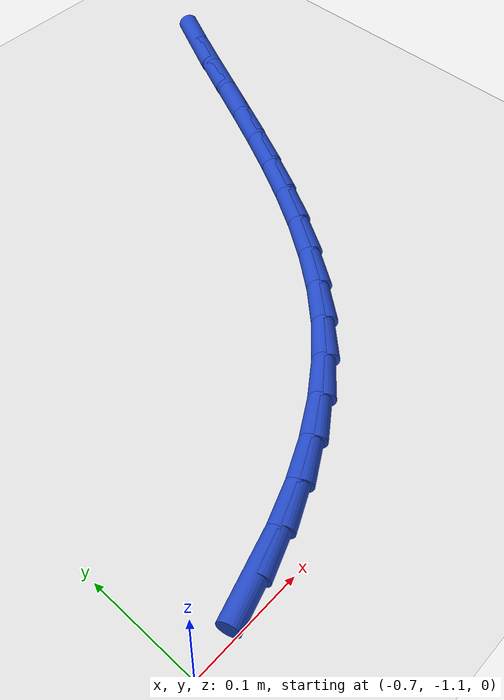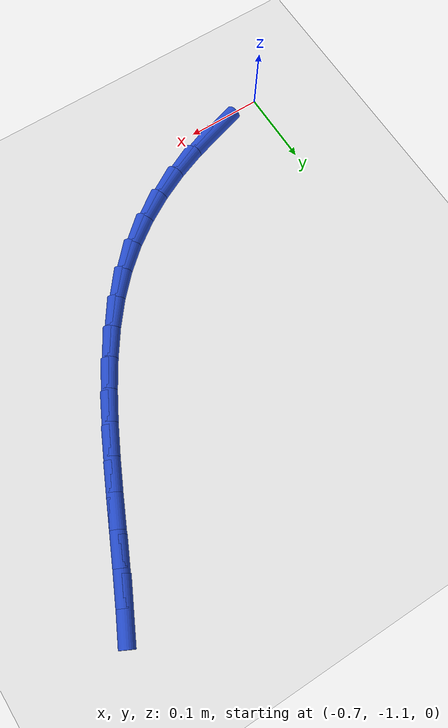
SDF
<sdf version="1.6">
 <world name="default">
  <model name="ground_plane">
   <static>1</static>
   <link name="link">
    <collision name="collision">
     <geometry><plane><normal>0 0 1</normal><size>100 100</size></plane></geometry>
     <surface><friction><ode><mu>100</mu><mu2>50</mu2></ode></friction></surface>
    </collision>
    <visual name="visual">
     <cast_shadows>0</cast_shadows>
     <geometry><plane><normal>0 0 1</normal><size>100 100</size></plane></geometry>
     <material>
      <script><uri>file://media/materials/scripts/gazebo.material</uri><name>Gazebo/WhiteGlow</name></script>
     </material>
    </visual>
   </link>
  </model>
  <model name="line">
   <link name="link_168">
    <pose>-0.6244132182745064 -1.0834729190270838 0.01 0 1.57 0.2942015855316978</pose>
    <collision name="collision">
     <geometry><cylinder><radius>0.01</radius><length>0.08</length></cylinder></geometry>
    </collision>
    <visual name="visual">
     <material>
      <script><name>Gazebo/Blue</name><uri>file://media/materials/scripts/gazebo.material</uri></script>
     </material>
     <geometry><cylinder><radius>0.01</radius><length>0.08</length></cylinder></geometry>
    </visual>
   </link>
   <link name="link_169">
    <pose>-0.5851173193138275 -1.0715664858100598 0.01 0 1.57 0.36771555956772795</pose>
    <collision name="collision">
     <geometry><cylinder><radius>0.01</radius><length>0.08</length></cylinder></geometry>
    </collision>
    <visual name="visual">
     <material>
      <script><name>Gazebo/Blue</name><uri>file://media/materials/scripts/gazebo.material</uri></script>
     </material>
     <geometry><cylinder><radius>0.01</radius><length>0.08</length></cylinder></geometry>
    </visual>
   </link>
   <link name="link_170">
    <pose>-0.5474306194666442 -1.0570481604143955 0.01 0 1.57 0.4464250781257681</pose>
    <collision name="collision">
     <geometry><cylinder><radius>0.01</radius><length>0.08</length></cylinder></geometry>
    </collision>
    <visual name="visual">
     <material>
      <script><name>Gazebo/Blue</name><uri>file://media/materials/scripts/gazebo.material</uri></script>
     </material>
     <geometry><cylinder><radius>0.01</radius><length>0.08</length></cylinder></geometry>
    </visual>
   </link>
   <link name="link_171">
    <pose>-0.511536244394734 -1.0398671905125139 0.01 0 1.57 0.5304540114646046</pose>
    <collision name="collision">
     <geometry><cylinder><radius>0.01</radius><length>0.08</length></cylinder></geometry>
    </collision>
    <visual name="visual">
     <material>
      <script><name>Gazebo/Blue</name><uri>file://media/materials/scripts/gazebo.material</uri></script>
     </material>
     <geometry><cylinder><radius>0.01</radius><length>0.08</length></cylinder></geometry>
    </visual>
   </link>
   <link name="link_172">
    <pose>-0.4776173197598748 -1.0199728237768368 0.01 0 1.57 0.6196770104712886</pose>
    <collision name="collision">
     <geometry><cylinder><radius>0.01</radius><length>0.08</length></cylinder></geometry>
    </collision>
    <visual name="visual">
     <material>
      <script><name>Gazebo/Blue</name><uri>file://media/materials/scripts/gazebo.material</uri></script>
     </material>
     <geometry><cylinder><radius>0.01</radius><length>0.08</length></cylinder></geometry>
    </visual>
   </link>
   <link name="link_173">
    <pose>-0.4458569712238444 -0.9973143078797873 0.01 0 1.57 0.7136441339555077</pose>
    <collision name="collision">
     <geometry><cylinder><radius>0.01</radius><length>0.08</length></cylinder></geometry>
    </collision>
    <visual name="visual">
     <material>
      <script><name>Gazebo/Blue</name><uri>file://media/materials/scripts/gazebo.material</uri></script>
     </material>
     <geometry><cylinder><radius>0.01</radius><length>0.08</length></cylinder></geometry>
    </visual>
   </link>
   <link name="link_174">
    <pose>-0.41643817183176574 -0.9718410112150123 0.01 0 1.57 0.8077968372902659</pose>
    <collision name="collision">
     <geometry><cylinder><radius>0.01</radius><length>0.08</length></cylinder></geometry>
    </collision>
    <visual name="visual">
     <material>
      <script><name>Gazebo/Blue</name><uri>file://media/materials/scripts/gazebo.material</uri></script>
     </material>
     <geometry><cylinder><radius>0.01</radius><length>0.08</length></cylinder></geometry>
    </visual>
   </link>
   <link name="link_175">
    <pose>-0.3894285745602455 -0.9435935214465594 0.01 0 1.57 0.8907013461725738</pose>
    <collision name="collision">
     <geometry><cylinder><radius>0.01</radius><length>0.08</length></cylinder></geometry>
    </collision>
    <visual name="visual">
     <material>
      <script><name>Gazebo/Blue</name><uri>file://media/materials/scripts/gazebo.material</uri></script>
     </material>
     <geometry><cylinder><radius>0.01</radius><length>0.08</length></cylinder></geometry>
    </visual>
   </link>
   <link name="link_176">
    <pose>-0.3645754606719432 -0.9128658433095842 0.01 0 1.57 0.9601645342845702</pose>
    <collision name="collision">
     <geometry><cylinder><radius>0.01</radius><length>0.08</length></cylinder></geometry>
    </collision>
    <visual name="visual">
     <material>
      <script><name>Gazebo/Blue</name><uri>file://media/materials/scripts/gazebo.material</uri></script>
     </material>
     <geometry><cylinder><radius>0.01</radius><length>0.08</length></cylinder></geometry>
    </visual>
   </link>
   <link name="link_177">
    <pose>-0.3415709259277971 -0.8799956337956832 0.01 0 1.57 1.0165236139814522</pose>
    <collision name="collision">
     <geometry><cylinder><radius>0.01</radius><length>0.08</length></cylinder></geometry>
    </collision>
    <visual name="visual">
     <material>
      <script><name>Gazebo/Blue</name><uri>file://media/materials/scripts/gazebo.material</uri></script>
     </material>
     <geometry><cylinder><radius>0.01</radius><length>0.08</length></cylinder></geometry>
    </visual>
   </link>
   <link name="link_178">
    <pose>-0.3201070660887457 -0.8453205498964537 0.01 0 1.57 1.0604891559409972</pose>
    <collision name="collision">
     <geometry><cylinder><radius>0.01</radius><length>0.08</length></cylinder></geometry>
    </collision>
    <visual name="visual">
     <material>
      <script><name>Gazebo/Blue</name><uri>file://media/materials/scripts/gazebo.material</uri></script>
     </material>
     <geometry><cylinder><radius>0.01</radius><length>0.08</length></cylinder></geometry>
    </visual>
   </link>
   <link name="link_179">
    <pose>-0.29987597691572704 -0.809178248603492 0.01 0 1.57 1.0928653571229778</pose>
    <collision name="collision">
     <geometry><cylinder><radius>0.01</radius><length>0.08</length></cylinder></geometry>
    </collision>
    <visual name="visual">
     <material>
      <script><name>Gazebo/Blue</name><uri>file://media/materials/scripts/gazebo.material</uri></script>
     </material>
     <geometry><cylinder><radius>0.01</radius><length>0.08</length></cylinder></geometry>
    </visual>
   </link>
   <link name="link_180">
    <pose>-0.2805697541696794 -0.7719063869083945 0.01 0 1.57 1.1143756240632974</pose>
    <collision name="collision">
     <geometry><cylinder><radius>0.01</radius><length>0.08</length></cylinder></geometry>
    </collision>
    <visual name="visual">
     <material>
      <script><name>Gazebo/Blue</name><uri>file://media/materials/scripts/gazebo.material</uri></script>
     </material>
     <geometry><cylinder><radius>0.01</radius><length>0.08</length></cylinder></geometry>
    </visual>
   </link>
   <link name="link_181">
    <pose>-0.2618804936115413 -0.7338426218027585 0.01 0 1.57 1.1255670480335054</pose>
    <collision name="collision">
     <geometry><cylinder><radius>0.01</radius><length>0.08</length></cylinder></geometry>
    </collision>
    <visual name="visual">
     <material>
      <script><name>Gazebo/Blue</name><uri>file://media/materials/scripts/gazebo.material</uri></script>
     </material>
     <geometry><cylinder><radius>0.01</radius><length>0.08</length></cylinder></geometry>
    </visual>
   </link>
   <link name="link_182">
    <pose>-0.24350029100225082 -0.6953246102781802 0.01 0 1.57 1.126764993463098</pose>
    <collision name="collision">
     <geometry><cylinder><radius>0.01</radius><length>0.08</length></cylinder></geometry>
    </collision>
    <visual name="visual">
     <material>
      <script><name>Gazebo/Blue</name><uri>file://media/materials/scripts/gazebo.material</uri></script>
     </material>
     <geometry><cylinder><radius>0.01</radius><length>0.08</length></cylinder></geometry>
    </visual>
   </link>
   <link name="link_183">
    <pose>-0.2251212421027464 -0.6566900093262567 0.01 0 1.57 1.1180571246238156</pose>
    <collision name="collision">
     <geometry><cylinder><radius>0.01</radius><length>0.08</length></cylinder></geometry>
    </collision>
    <visual name="visual">
     <material>
      <script><name>Gazebo/Blue</name><uri>file://media/materials/scripts/gazebo.material</uri></script>
     </material>
     <geometry><cylinder><radius>0.01</radius><length>0.08</length></cylinder></geometry>
    </visual>
   </link>
   <link name="link_184">
    <pose>-0.2064354426739663 -0.6182764759385845 0.01 0 1.57 1.0993230476057068</pose>
    <collision name="collision">
     <geometry><cylinder><radius>0.01</radius><length>0.08</length></cylinder></geometry>
    </collision>
    <visual name="visual">
     <material>
      <script><name>Gazebo/Blue</name><uri>file://media/materials/scripts/gazebo.material</uri></script>
     </material>
     <geometry><cylinder><radius>0.01</radius><length>0.08</length></cylinder></geometry>
    </visual>
   </link>
  </model>
 </world>
</sdf>
